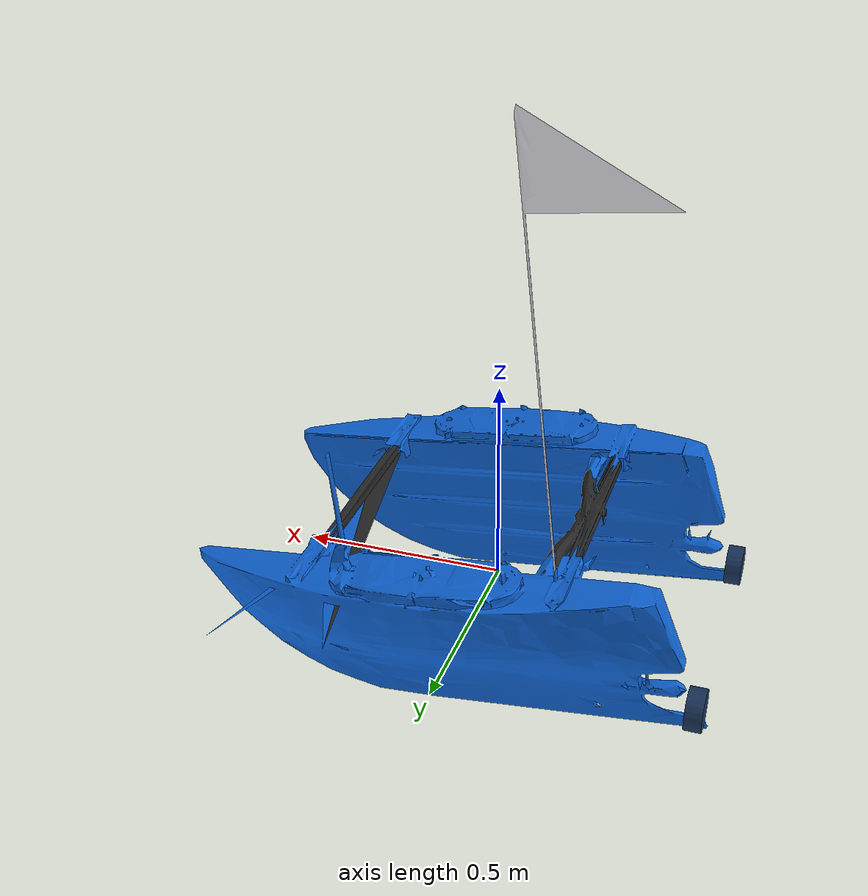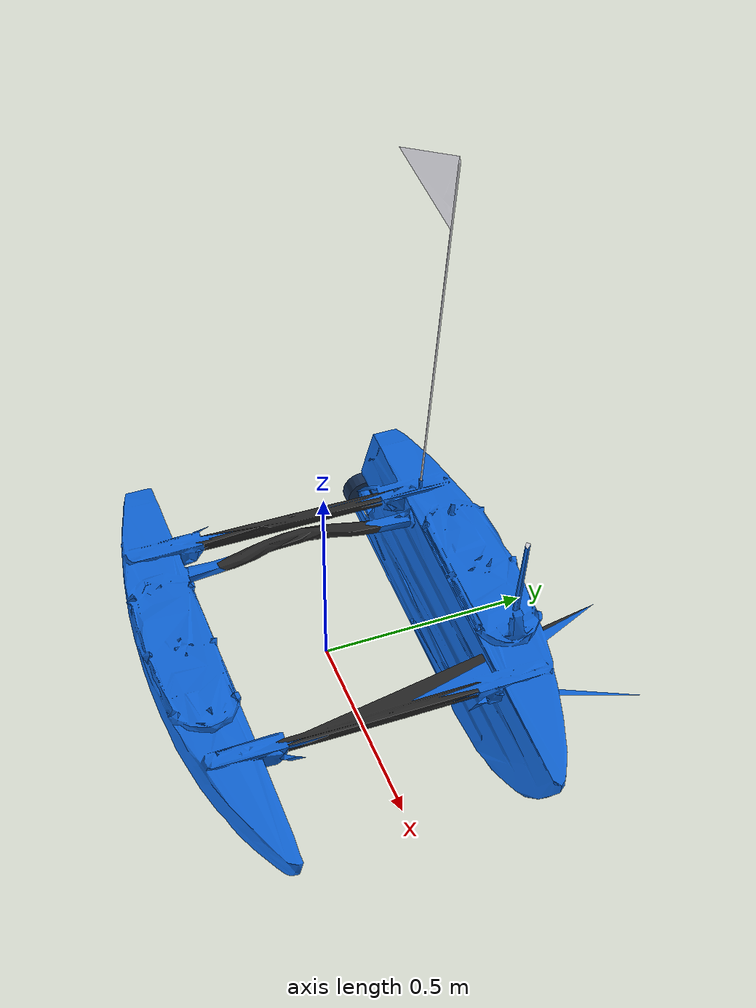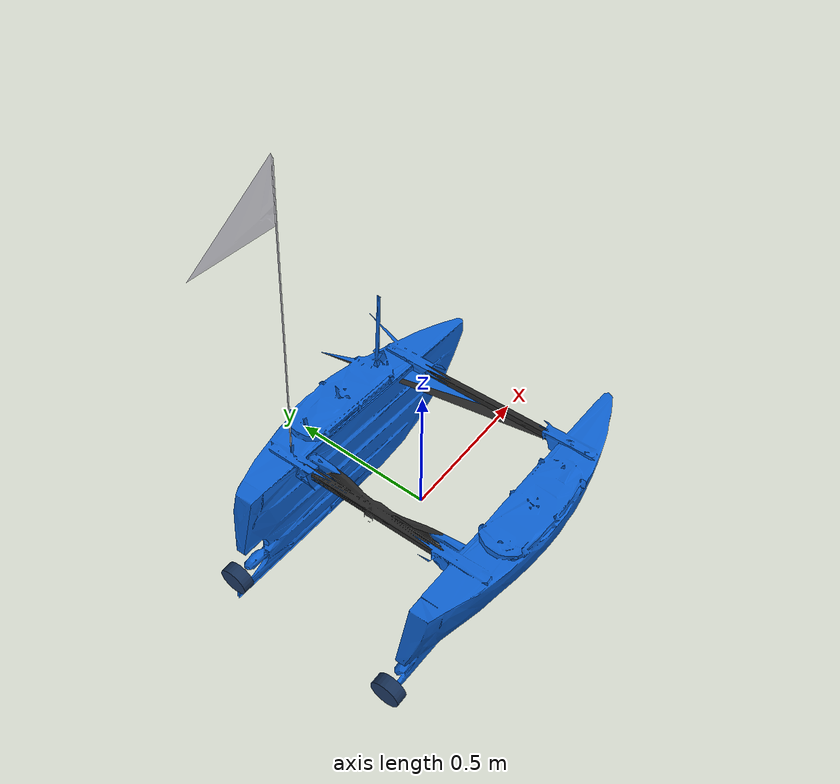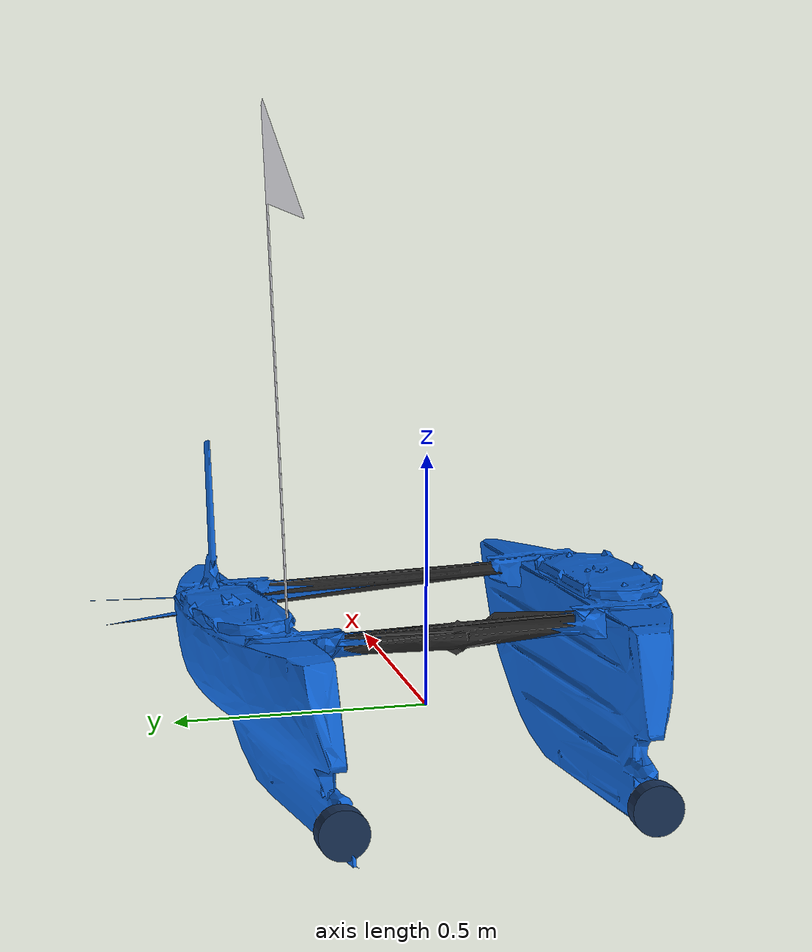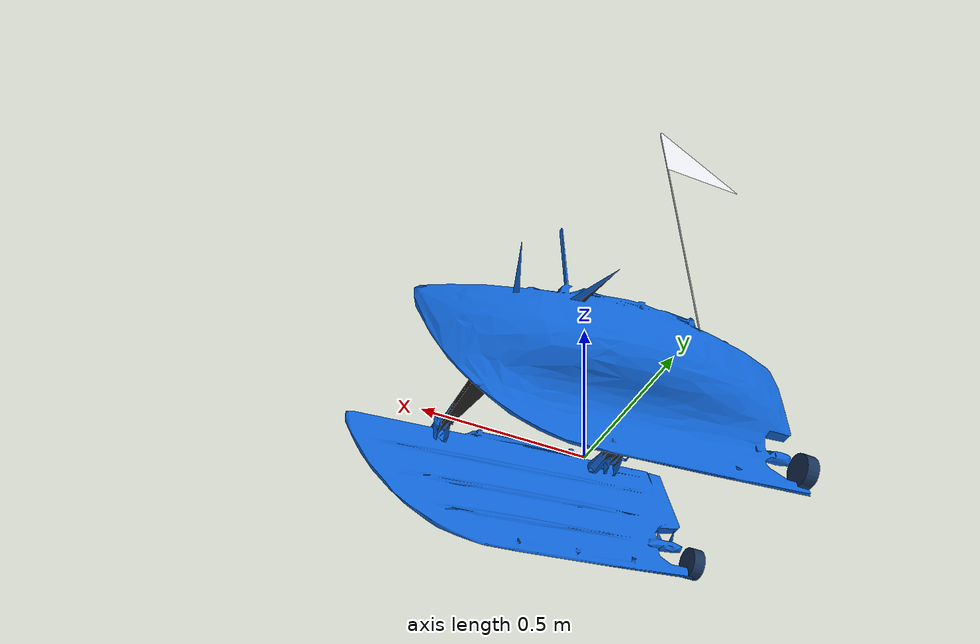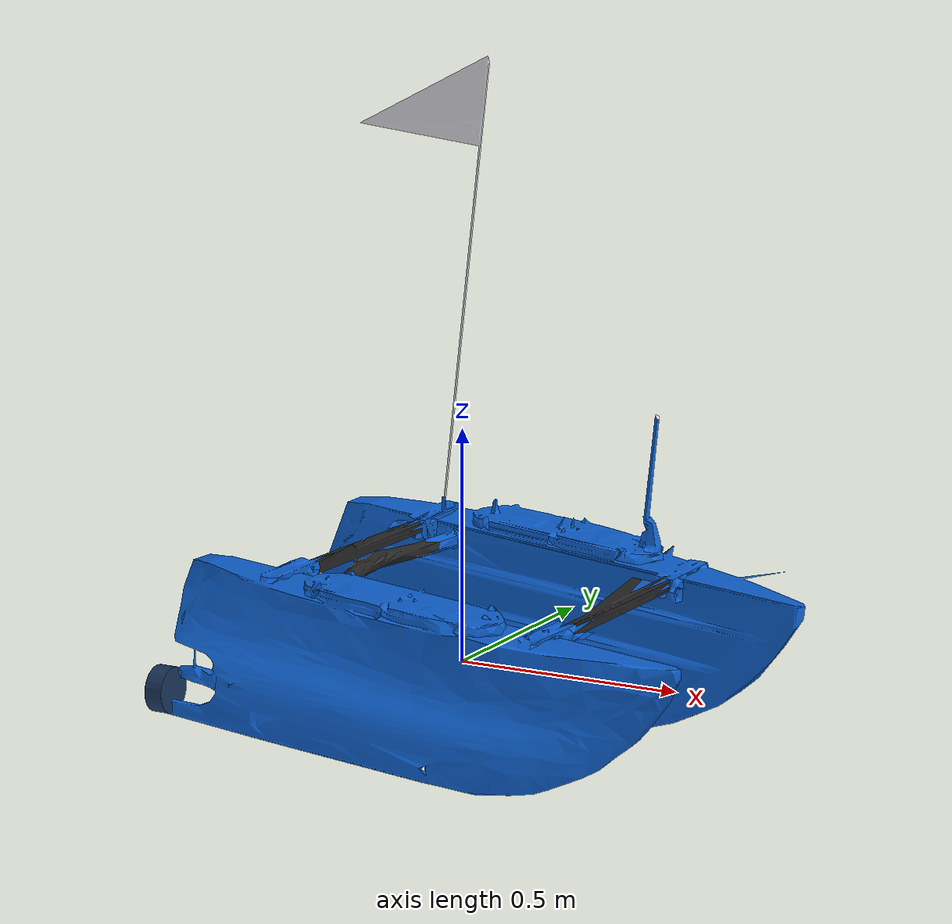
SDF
<?xml version="1.0" ?>
<sdf version="1.9">
  <model name="blueboat">
    <static>false</static>

    <!-- Base Link (Catamaran Hull & Electronics Deck) -->
    <link name="base_link">
      <pose>0 0 0 0 0 0</pose>
      <inertial>
        <pose>0.0 0.0 0.05 0 0 0</pose>
        <mass>14.5</mass>
        <inertia>
          <ixx>0.85</ixx><ixy>0.0</ixy><ixz>0.0</ixz>
          <iyy>1.45</iyy><iyz>0.0</iyz><izz>1.95</izz>
        </inertia>
      </inertial>

      <!-- Realistic 3D Blue Robotics BlueBoat Visual Meshes -->
      <visual name="blueboat_hulls_visual">
        <pose>0 0 0 0 0 0</pose>
        <geometry>
          <mesh>
            <uri>model://blueboat/meshes/blueboat_hulls.obj</uri>
          </mesh>
        </geometry>
        <material>
          <ambient>0.04 0.25 0.65 1.0</ambient>
          <diffuse>0.06 0.40 0.85 1.0</diffuse>
          <specular>0.6 0.6 0.6 1.0</specular>
          <pbr>
            <metal>
              <albedo_color>0.06 0.40 0.85 1.0</albedo_color>
              <roughness>0.25</roughness>
              <metalness>0.1</metalness>
            </metal>
          </pbr>
        </material>
      </visual>

      <visual name="blueboat_frame_visual">
        <pose>0 0 0 0 0 0</pose>
        <geometry>
          <mesh>
            <uri>model://blueboat/meshes/blueboat_frame.obj</uri>
          </mesh>
        </geometry>
        <material>
          <ambient>0.1 0.1 0.1 1.0</ambient>
          <diffuse>0.15 0.15 0.15 1.0</diffuse>
          <specular>0.3 0.3 0.3 1.0</specular>
          <pbr>
            <metal>
              <albedo_color>0.15 0.15 0.15 1.0</albedo_color>
              <roughness>0.5</roughness>
              <metalness>0.8</metalness>
            </metal>
          </pbr>
        </material>
      </visual>

      <visual name="blueboat_antenna_visual">
        <pose>0 0 0 0 0 0</pose>
        <geometry>
          <mesh>
            <uri>model://blueboat/meshes/blueboat_antenna.obj</uri>
          </mesh>
        </geometry>
        <material>
          <ambient>0.8 0.8 0.8 1.0</ambient>
          <diffuse>0.92 0.92 0.95 1.0</diffuse>
          <specular>0.5 0.5 0.5 1.0</specular>
          <pbr>
            <metal>
              <albedo_color>0.92 0.92 0.95 1.0</albedo_color>
              <roughness>0.3</roughness>
              <metalness>0.1</metalness>
            </metal>
          </pbr>
        </material>
      </visual>

      <!-- Port (Left) Pontoon Hull Collision -->
      <collision name="left_hull_collision">
        <pose>0 0.30 0 0 1.57079632679 0</pose>
        <geometry><capsule><radius>0.13</radius><length>1.05</length></capsule></geometry>
      </collision>

      <!-- Starboard (Right) Pontoon Hull Collision -->
      <collision name="right_hull_collision">
        <pose>0 -0.30 0 0 1.57079632679 0</pose>
        <geometry><capsule><radius>0.13</radius><length>1.05</length></capsule></geometry>
      </collision>

      <!-- 1. IMU Sensor (50 Hz) -->
      <sensor name="imu_sensor" type="imu">
        <always_on>true</always_on>
        <update_rate>50</update_rate>
        <topic>/blueboat/imu</topic>
        <imu>
          <angular_velocity>
            <x><noise type="gaussian"><mean>0.0</mean><stddev>0.005</stddev></noise></x>
            <y><noise type="gaussian"><mean>0.0</mean><stddev>0.005</stddev></noise></y>
            <z><noise type="gaussian"><mean>0.0</mean><stddev>0.003</stddev></noise></z>
          </angular_velocity>
          <linear_acceleration>
            <x><noise type="gaussian"><mean>0.0</mean><stddev>0.02</stddev></noise></x>
            <y><noise type="gaussian"><mean>0.0</mean><stddev>0.02</stddev></noise></y>
            <z><noise type="gaussian"><mean>0.0</mean><stddev>0.02</stddev></noise></z>
          </linear_acceleration>
        </imu>
      </sensor>

      <!-- 2. NavSat GPS Sensor (5 Hz) -->
      <sensor name="navsat_sensor" type="navsat">
        <always_on>true</always_on>
        <update_rate>5</update_rate>
        <topic>/blueboat/gps</topic>
        <navsat>
          <position_sensing>
            <horizontal><noise type="gaussian"><mean>0.0</mean><stddev>0.3</stddev></noise></horizontal>
            <vertical><noise type="gaussian"><mean>0.0</mean><stddev>0.5</stddev></noise></vertical>
          </position_sensing>
        </navsat>
      </sensor>

      <!-- 3. Contact Collision Sensor -->
      <sensor name="contact_sensor" type="contact">
        <always_on>true</always_on>
        <update_rate>50</update_rate>
        <topic>/blueboat/contacts</topic>
        <contact>
          <collision>left_hull_collision</collision>
          <collision>right_hull_collision</collision>
        </contact>
      </sensor>

      <!-- 4. Ping2 Port-Side Echosounder (GPU LiDAR at +90 deg / port) -->
      <sensor name="ping2_port" type="gpu_lidar">
        <pose>0.1 0.30 0.05 0 0 1.57079632679</pose>
        <always_on>true</always_on>
        <update_rate>10</update_rate>
        <visualize>true</visualize>
        <topic>/blueboat/ping2_port</topic>
        <lidar>
          <scan>
            <horizontal><samples>1</samples><resolution>1</resolution><min_angle>0.0</min_angle><max_angle>0.0</max_angle></horizontal>
          </scan>
          <range><min>0.5</min><max>30.0</max><resolution>0.01</resolution></range>
          <noise><type>gaussian</type><mean>0.0</mean><stddev>0.02</stddev></noise>
        </lidar>
      </sensor>
    </link>

    <!-- Left Thruster (Blue Robotics T200) -->
    <link name="left_propeller_link">
      <pose>-0.55 0.30 -0.06 0 0 0</pose>
      <inertial>
        <mass>0.15</mass>
        <inertia><ixx>0.0002</ixx><ixy>0.0</ixy><ixz>0.0</ixz><iyy>0.0001</iyy><iyz>0.0</iyz><izz>0.0001</izz></inertia>
      </inertial>
      <visual name="left_propeller_visual">
        <pose>0 0 0 0 1.57079632679 0</pose>
        <geometry><cylinder><radius>0.05</radius><length>0.04</length></cylinder></geometry>
        <material><ambient>0.08 0.15 0.25 1.0</ambient><diffuse>0.1 0.2 0.35 1.0</diffuse><specular>0.5 0.5 0.5 1.0</specular></material>
      </visual>
      <collision name="left_propeller_collision">
        <pose>0 0 0 0 1.57079632679 0</pose>
        <geometry><cylinder><radius>0.05</radius><length>0.04</length></cylinder></geometry>
      </collision>
    </link>

    <joint name="left_propeller_joint" type="revolute">
      <parent>base_link</parent>
      <child>left_propeller_link</child>
      <axis><xyz>1 0 0</xyz><limit><lower>-1e16</lower><upper>1e16</upper></limit></axis>
    </joint>

    <!-- Right Thruster (Blue Robotics T200) -->
    <link name="right_propeller_link">
      <pose>-0.55 -0.30 -0.06 0 0 0</pose>
      <inertial>
        <mass>0.15</mass>
        <inertia><ixx>0.0002</ixx><ixy>0.0</ixy><ixz>0.0</ixz><iyy>0.0001</iyy><iyz>0.0</iyz><izz>0.0001</izz></inertia>
      </inertial>
      <visual name="right_propeller_visual">
        <pose>0 0 0 0 1.57079632679 0</pose>
        <geometry><cylinder><radius>0.05</radius><length>0.04</length></cylinder></geometry>
        <material><ambient>0.08 0.15 0.25 1.0</ambient><diffuse>0.1 0.2 0.35 1.0</diffuse><specular>0.5 0.5 0.5 1.0</specular></material>
      </visual>
      <collision name="right_propeller_collision">
        <pose>0 0 0 0 1.57079632679 0</pose>
        <geometry><cylinder><radius>0.05</radius><length>0.04</length></cylinder></geometry>
      </collision>
    </link>

    <joint name="right_propeller_joint" type="revolute">
      <parent>base_link</parent>
      <child>right_propeller_link</child>
      <axis><xyz>1 0 0</xyz><limit><lower>-1e16</lower><upper>1e16</upper></limit></axis>
    </joint>

    <!-- Fossen Hydrodynamics Plugin -->
    <plugin
      filename="gz-sim-hydrodynamics-system"
      name="gz::sim::systems::Hydrodynamics">
      <link_name>base_link</link_name>
      <xDotU>-3.5</xDotU><yDotV>-12.0</yDotV><zDotW>-15.0</zDotW>
      <kDotP>-0.5</kDotP><mDotQ>-1.2</mDotQ><nDotR>-2.8</nDotR>
      <xU>-15.0</xU><yV>-35.0</yV><zW>-40.0</zW>
      <kP>-4.0</kP><mQ>-6.0</mQ><nR>-12.0</nR>
      <xUabsU>-22.0</xUabsU><yVabsV>-48.0</yVabsV><zWabsW>-60.0</zWabsW>
      <kPabsP>-5.0</kPabsP><mQabsQ>-8.0</mQabsQ><nRabsR>-18.0</nRabsR>
    </plugin>

    <!-- Thruster Plugins -->
    <plugin
      filename="gz-sim-thruster-system"
      name="gz::sim::systems::Thruster">
      <namespace>blueboat</namespace>
      <joint_name>left_propeller_joint</joint_name>
      <thrust_coefficient>0.0035</thrust_coefficient>
      <fluid_density>1000</fluid_density>
      <propeller_diameter>0.10</propeller_diameter>
      <velocity_control>false</velocity_control>
      <use_angvel_cmd>false</use_angvel_cmd>
      <sub_topic>cmd_thrust_left</sub_topic>
    </plugin>

    <plugin
      filename="gz-sim-thruster-system"
      name="gz::sim::systems::Thruster">
      <namespace>blueboat</namespace>
      <joint_name>right_propeller_joint</joint_name>
      <thrust_coefficient>0.0035</thrust_coefficient>
      <fluid_density>1000</fluid_density>
      <propeller_diameter>0.10</propeller_diameter>
      <velocity_control>false</velocity_control>
      <use_angvel_cmd>false</use_angvel_cmd>
      <sub_topic>cmd_thrust_right</sub_topic>
    </plugin>

  </model>
</sdf>
